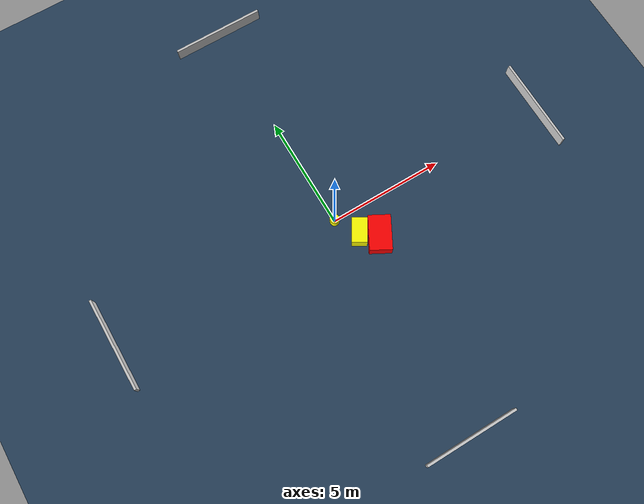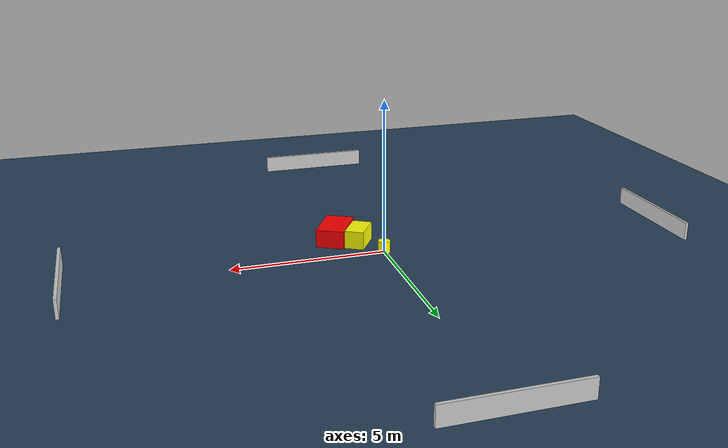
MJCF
<?xml version="1.0" ?>
<mujoco model="generated_environment">
  <option timestep="0.01" integrator="RK4" cone="elliptic"/>
  <default>
    <geom density="1"/>
  </default>
  <asset>
    <texture builtin="gradient" height="3072" name="skybox" rgb1="0.3 0.5 0.7" rgb2="0 0 0" type="skybox" width="512"/>
    <texture builtin="checker" height="300" name="groundplane" rgb1="0.2 0.3 0.4" rgb2="0.1 0.2 0.3" type="2d" width="300"/>
    <material name="groundplane" reflectance="0.2" texrepeat="5 5" texture="groundplane"/>
  </asset>
  <worldbody>
    <light dir="0 0 -1" directional="true" pos="0 0 1.5"/>
    <geom condim="3" friction="0.5 0.005 0.001" material="groundplane" name="floor" pos="0 0 0" size="0 0 0.05" type="plane"/>
    <body name="walls">
      <geom name="wall_1" condim="4" pos="-10.0 0.0 0.3" rgba="0.800000011920929 0.800000011920929 0.800000011920929 1.0" size="0.05 2.0 0.3" type="box"/>
      <geom name="wall_2" condim="4" pos="10.0 0.0 0.3" rgba="0.800000011920929 0.800000011920929 0.800000011920929 1.0" size="0.05 2.0 0.3" type="box"/>
      <geom name="wall_3" condim="4" pos="0.0 -10.0 0.3" rgba="0.800000011920929 0.800000011920929 0.800000011920929 1.0" size="2.0 0.05 0.3" type="box"/>
      <geom name="wall_4" condim="4" pos="0.0 10.0 0.3" rgba="0.800000011920929 0.800000011920929 0.800000011920929 1.0" size="2.0 0.05 0.3" type="box"/>
    </body>
    <body name="robot">
      <joint name="joint_x" type="slide" pos="0 0 0" axis="1 0 0"/>
      <joint name="joint_y" type="slide" pos="0 0 0" axis="0 1 0"/>
      <geom name="robot" type="cylinder" pos="0.0 0.0 0.2" size="0.2 0.2 0.0" mass="5.0" friction="1.0 0.005 0.0001" condim="4" rgba="1.0 1.0 0.0 1.0"/>
    </body>
    <body name="obstacle_1_movable">
      <geom name="obstacle_1_movable" condim="4" pos="0.5975496895154668 -0.9698910457496838 0.3" euler="0 0 58.84783100419241" friction="0.0 0.005 0.001" rgba="1.0 1.0 0.0 1.0" size="0.5258845992598302 0.31883330178060226 0.3" type="box" mass="0.1"/>
      <joint type="free"/>
    </body>
    <body name="obstacle_2_static">
      <geom name="obstacle_2_static" condim="4" pos="1.2530200190025085 -1.4844215310065643 0.3" euler="0 0 241.44545138691922" friction="0.0 0.005 0.001" rgba="1.0 0.0 0.0 1.0" size="0.739047589209199 0.47012763519493633 0.3" type="box"/>
    </body>
  </worldbody>
  <actuator>
    <motor name="actuator_x" joint="joint_x" gear="1" ctrlrange="-1 1"/>
    <motor name="actuator_y" joint="joint_y" gear="1" ctrlrange="-1 1"/>
  </actuator>
</mujoco>
